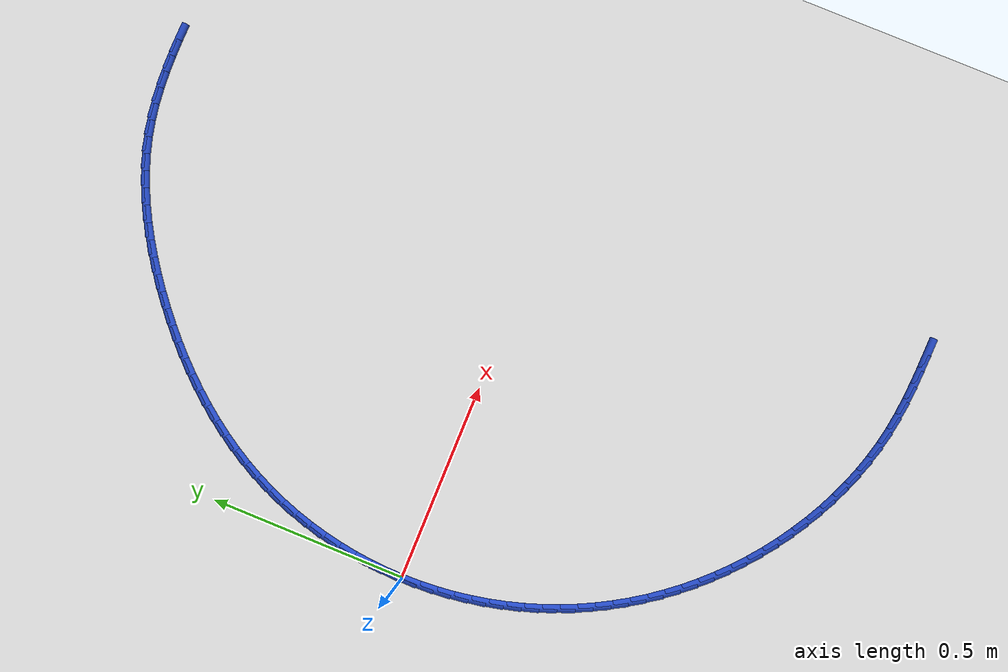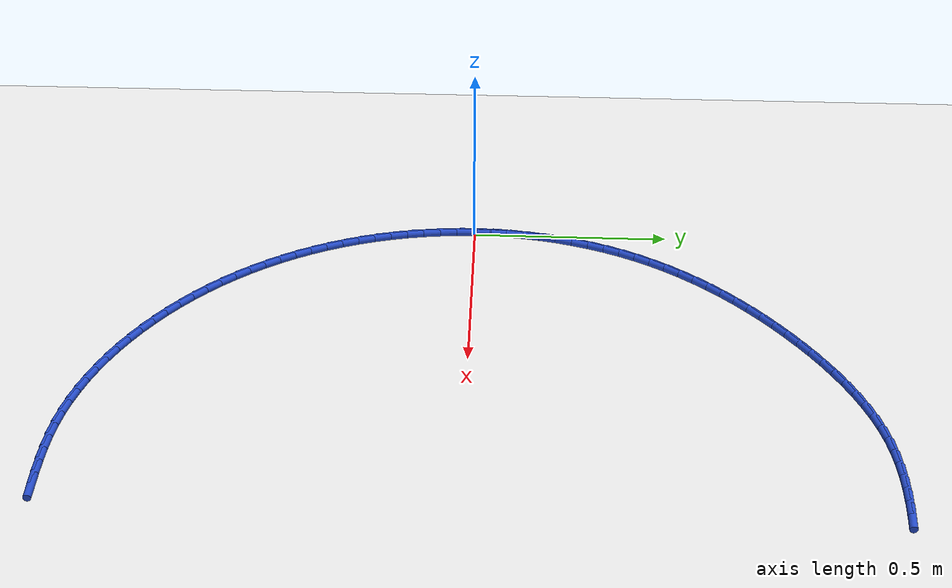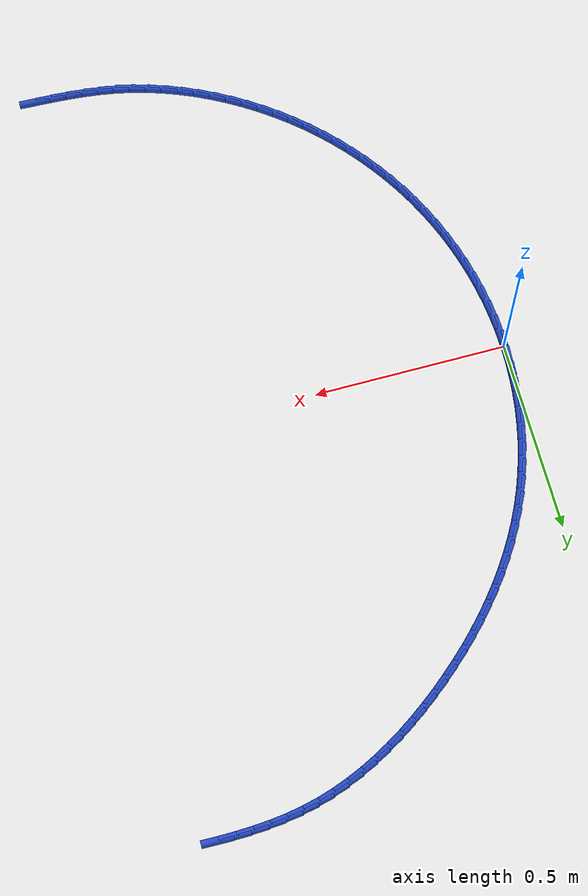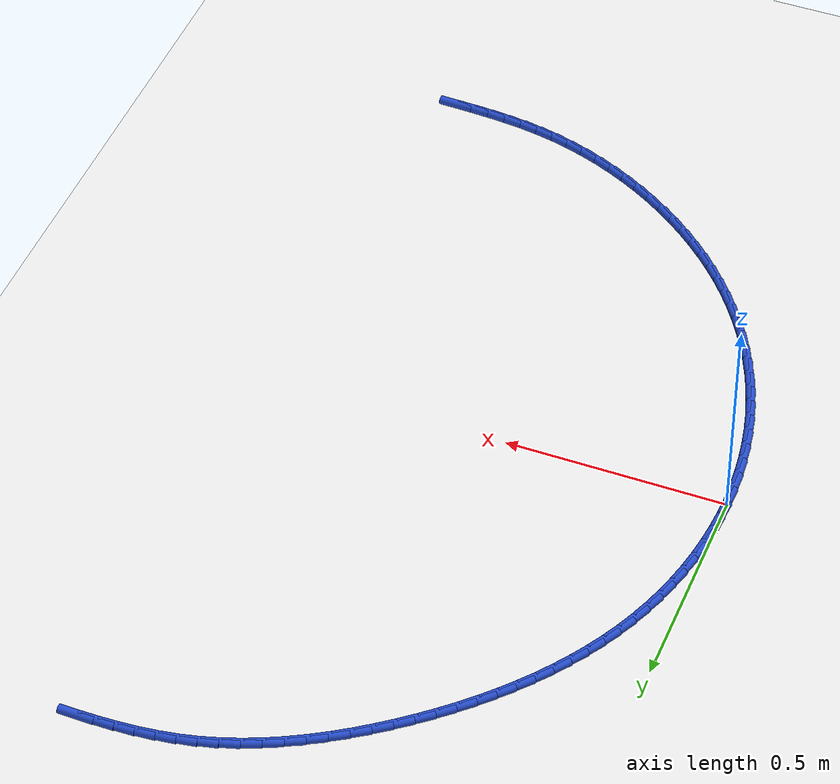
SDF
<sdf version="1.6">
 <world name="default">
  <model name="ground_plane">
   <static>1</static>
   <link name="link">
    <collision name="collision">
     <geometry><plane><normal>0 0 1</normal><size>100 100</size></plane></geometry>
     <surface><friction><ode><mu>100</mu><mu2>50</mu2></ode></friction></surface>
    </collision>
    <visual name="visual">
     <cast_shadows>0</cast_shadows>
     <geometry><plane><normal>0 0 1</normal><size>100 100</size></plane></geometry>
     <material>
      <script><uri>file://media/materials/scripts/gazebo.material</uri><name>Gazebo/WhiteGlow</name></script>
     </material>
    </visual>
   </link>
  </model>
  <model name="line">
   <link name="link_0">
    <pose>1.0408340855860843e-17 -1.3877787807814457e-16 0.01 0 1.57 1.5510047050633564</pose>
    <collision name="collision">
     <geometry><cylinder><radius>0.01</radius><length>0.08</length></cylinder></geometry>
    </collision>
    <visual name="visual">
     <material>
      <script><name>Gazebo/Blue</name><uri>file://media/materials/scripts/gazebo.material</uri></script>
     </material>
     <geometry><cylinder><radius>0.01</radius><length>0.08</length></cylinder></geometry>
    </visual>
   </link>
   <link name="link_1">
    <pose>0.0008661670041303693 0.0437586125074585 0.01 0 1.57 1.5073824227022519</pose>
    <collision name="collision">
     <geometry><cylinder><radius>0.01</radius><length>0.08</length></cylinder></geometry>
    </collision>
    <visual name="visual">
     <material>
      <script><name>Gazebo/Blue</name><uri>file://media/materials/scripts/gazebo.material</uri></script>
     </material>
     <geometry><cylinder><radius>0.01</radius><length>0.08</length></cylinder></geometry>
    </visual>
   </link>
   <link name="link_2">
    <pose>0.003640453336723728 0.08744881905656593 0.01 0 1.57 1.4637581779412188</pose>
    <collision name="collision">
     <geometry><cylinder><radius>0.01</radius><length>0.08</length></cylinder></geometry>
    </collision>
    <visual name="visual">
     <material>
      <script><name>Gazebo/Blue</name><uri>file://media/materials/scripts/gazebo.material</uri></script>
     </material>
     <geometry><cylinder><radius>0.01</radius><length>0.08</length></cylinder></geometry>
    </visual>
   </link>
   <link name="link_3">
    <pose>0.00831672128322156 0.1309697077833986 0.01 0 1.57 1.4199958995333815</pose>
    <collision name="collision">
     <geometry><cylinder><radius>0.01</radius><length>0.08</length></cylinder></geometry>
    </collision>
    <visual name="visual">
     <material>
      <script><name>Gazebo/Blue</name><uri>file://media/materials/scripts/gazebo.material</uri></script>
     </material>
     <geometry><cylinder><radius>0.01</radius><length>0.08</length></cylinder></geometry>
    </visual>
   </link>
   <link name="link_4">
    <pose>0.014888833129065325 0.17422036682403302 0.01 0 1.57 1.3759603452155063</pose>
    <collision name="collision">
     <geometry><cylinder><radius>0.01</radius><length>0.08</length></cylinder></geometry>
    </collision>
    <visual name="visual">
     <material>
      <script><name>Gazebo/Blue</name><uri>file://media/materials/scripts/gazebo.material</uri></script>
     </material>
     <geometry><cylinder><radius>0.01</radius><length>0.08</length></cylinder></geometry>
    </visual>
   </link>
   <link name="link_5">
    <pose>0.023350651159696492 0.2170998843145456 0.01 0 1.57 1.3315179308007221</pose>
    <collision name="collision">
     <geometry><cylinder><radius>0.01</radius><length>0.08</length></cylinder></geometry>
    </collision>
    <visual name="visual">
     <material>
      <script><name>Gazebo/Blue</name><uri>file://media/materials/scripts/gazebo.material</uri></script>
     </material>
     <geometry><cylinder><radius>0.01</radius><length>0.08</length></cylinder></geometry>
    </visual>
   </link>
   <link name="link_6">
    <pose>0.033696037660556545 0.2595073483910131 0.01 0 1.57 1.286537709282582</pose>
    <collision name="collision">
     <geometry><cylinder><radius>0.01</radius><length>0.08</length></cylinder></geometry>
    </collision>
    <visual name="visual">
     <material>
      <script><name>Gazebo/Blue</name><uri>file://media/materials/scripts/gazebo.material</uri></script>
     </material>
     <geometry><cylinder><radius>0.01</radius><length>0.08</length></cylinder></geometry>
    </visual>
   </link>
   <link name="link_7">
    <pose>0.04591885491708693 0.30134184718951174 0.01 0 1.57 1.2408925728374436</pose>
    <collision name="collision">
     <geometry><cylinder><radius>0.01</radius><length>0.08</length></cylinder></geometry>
    </collision>
    <visual name="visual">
     <material>
      <script><name>Gazebo/Blue</name><uri>file://media/materials/scripts/gazebo.material</uri></script>
     </material>
     <geometry><cylinder><radius>0.01</radius><length>0.08</length></cylinder></geometry>
    </visual>
   </link>
   <link name="link_8">
    <pose>0.06001296521472912 0.3425024688461182 0.01 0 1.57 1.1944607478046259</pose>
    <collision name="collision">
     <geometry><cylinder><radius>0.01</radius><length>0.08</length></cylinder></geometry>
    </collision>
    <visual name="visual">
     <material>
      <script><name>Gazebo/Blue</name><uri>file://media/materials/scripts/gazebo.material</uri></script>
     </material>
     <geometry><cylinder><radius>0.01</radius><length>0.08</length></cylinder></geometry>
    </visual>
   </link>
   <link name="link_9">
    <pose>0.0759722308389246 0.38288830149690894 0.01 0 1.57 1.147153978568763</pose>
    <collision name="collision">
     <geometry><cylinder><radius>0.01</radius><length>0.08</length></cylinder></geometry>
    </collision>
    <visual name="visual">
     <material>
      <script><name>Gazebo/Blue</name><uri>file://media/materials/scripts/gazebo.material</uri></script>
     </material>
     <geometry><cylinder><radius>0.01</radius><length>0.08</length></cylinder></geometry>
    </visual>
   </link>
   <link name="link_10">
    <pose>0.09378972469658972 0.4223994590807371 0.01 0 1.57 1.0999242929448283</pose>
    <collision name="collision">
     <geometry><cylinder><radius>0.01</radius><length>0.08</length></cylinder></geometry>
    </collision>
    <visual name="visual">
     <material>
      <script><name>Gazebo/Blue</name><uri>file://media/materials/scripts/gazebo.material</uri></script>
     </material>
     <geometry><cylinder><radius>0.01</radius><length>0.08</length></cylinder></geometry>
    </visual>
   </link>
   <link name="link_11">
    <pose>0.11342769083888135 0.4609761178447701 0.01 0 1.57 1.0541549785975148</pose>
    <collision name="collision">
     <geometry><cylinder><radius>0.01</radius><length>0.08</length></cylinder></geometry>
    </collision>
    <visual name="visual">
     <material>
      <script><name>Gazebo/Blue</name><uri>file://media/materials/scripts/gazebo.material</uri></script>
     </material>
     <geometry><cylinder><radius>0.01</radius><length>0.08</length></cylinder></geometry>
    </visual>
   </link>
   <link name="link_12">
    <pose>0.13480824333574323 0.49861060322044926 0.01 0 1.57 1.00999541218974</pose>
    <collision name="collision">
     <geometry><cylinder><radius>0.01</radius><length>0.08</length></cylinder></geometry>
    </collision>
    <visual name="visual">
     <material>
      <script><name>Gazebo/Blue</name><uri>file://media/materials/scripts/gazebo.material</uri></script>
     </material>
     <geometry><cylinder><radius>0.01</radius><length>0.08</length></cylinder></geometry>
    </visual>
   </link>
   <link name="link_13">
    <pose>0.15785080601760312 0.5352987366238143 0.01 0 1.57 0.9674761682138244</pose>
    <collision name="collision">
     <geometry><cylinder><radius>0.01</radius><length>0.08</length></cylinder></geometry>
    </collision>
    <visual name="visual">
     <material>
      <script><name>Gazebo/Blue</name><uri>file://media/materials/scripts/gazebo.material</uri></script>
     </material>
     <geometry><cylinder><radius>0.01</radius><length>0.08</length></cylinder></geometry>
    </visual>
   </link>
   <link name="link_14">
    <pose>0.18247480271488886 0.5710363394709055 0.01 0 1.57 0.9266021937544706</pose>
    <collision name="collision">
     <geometry><cylinder><radius>0.01</radius><length>0.08</length></cylinder></geometry>
    </collision>
    <visual name="visual">
     <material>
      <script><name>Gazebo/Blue</name><uri>file://media/materials/scripts/gazebo.material</uri></script>
     </material>
     <geometry><cylinder><radius>0.01</radius><length>0.08</length></cylinder></geometry>
    </visual>
   </link>
   <link name="link_15">
    <pose>0.2085996572580282 0.605819233177763 0.01 0 1.57 0.8873565271350221</pose>
    <collision name="collision">
     <geometry><cylinder><radius>0.01</radius><length>0.08</length></cylinder></geometry>
    </collision>
    <visual name="visual">
     <material>
      <script><name>Gazebo/Blue</name><uri>file://media/materials/scripts/gazebo.material</uri></script>
     </material>
     <geometry><cylinder><radius>0.01</radius><length>0.08</length></cylinder></geometry>
    </visual>
   </link>
   <link name="link_16">
    <pose>0.23614479347744888 0.6396432391604265 0.01 0 1.57 0.8497040258405479</pose>
    <collision name="collision">
     <geometry><cylinder><radius>0.01</radius><length>0.08</length></cylinder></geometry>
    </collision>
    <visual name="visual">
     <material>
      <script><name>Gazebo/Blue</name><uri>file://media/materials/scripts/gazebo.material</uri></script>
     </material>
     <geometry><cylinder><radius>0.01</radius><length>0.08</length></cylinder></geometry>
    </visual>
   </link>
   <link name="link_17">
    <pose>0.2650296352035787 0.6725041788349362 0.01 0 1.57 0.8135949042184399</pose>
    <collision name="collision">
     <geometry><cylinder><radius>0.01</radius><length>0.08</length></cylinder></geometry>
    </collision>
    <visual name="visual">
     <material>
      <script><name>Gazebo/Blue</name><uri>file://media/materials/scripts/gazebo.material</uri></script>
     </material>
     <geometry><cylinder><radius>0.01</radius><length>0.08</length></cylinder></geometry>
    </visual>
   </link>
   <link name="link_18">
    <pose>0.29517360626684525 0.704397873617332 0.01 0 1.57 0.7789679485572772</pose>
    <collision name="collision">
     <geometry><cylinder><radius>0.01</radius><length>0.08</length></cylinder></geometry>
    </collision>
    <visual name="visual">
     <material>
      <script><name>Gazebo/Blue</name><uri>file://media/materials/scripts/gazebo.material</uri></script>
     </material>
     <geometry><cylinder><radius>0.01</radius><length>0.08</length></cylinder></geometry>
    </visual>
   </link>
   <link name="link_19">
    <pose>0.3264961304976766 0.735320144923654 0.01 0 1.57 0.7457533346031334</pose>
    <collision name="collision">
     <geometry><cylinder><radius>0.01</radius><length>0.08</length></cylinder></geometry>
    </collision>
    <visual name="visual">
     <material>
      <script><name>Gazebo/Blue</name><uri>file://media/materials/scripts/gazebo.material</uri></script>
     </material>
     <geometry><cylinder><radius>0.01</radius><length>0.08</length></cylinder></geometry>
    </visual>
   </link>
   <link name="link_20">
    <pose>0.3589166317265001 0.7652668141699421 0.01 0 1.57 0.7138750176041784</pose>
    <collision name="collision">
     <geometry><cylinder><radius>0.01</radius><length>0.08</length></cylinder></geometry>
    </collision>
    <visual name="visual">
     <material>
      <script><name>Gazebo/Blue</name><uri>file://media/materials/scripts/gazebo.material</uri></script>
     </material>
     <geometry><cylinder><radius>0.01</radius><length>0.08</length></cylinder></geometry>
    </visual>
   </link>
   <link name="link_21">
    <pose>0.39235453378374396 0.7942337027722364 0.01 0 1.57 0.6832103914307424</pose>
    <collision name="collision">
     <geometry><cylinder><radius>0.01</radius><length>0.08</length></cylinder></geometry>
    </collision>
    <visual name="visual">
     <material>
      <script><name>Gazebo/Blue</name><uri>file://media/materials/scripts/gazebo.material</uri></script>
     </material>
     <geometry><cylinder><radius>0.01</radius><length>0.08</length></cylinder></geometry>
    </visual>
   </link>
   <link name="link_22">
    <pose>0.4267297880257817 0.8222146436564644 0.01 0 1.57 0.6521258205594856</pose>
    <collision name="collision">
     <geometry><cylinder><radius>0.01</radius><length>0.08</length></cylinder></geometry>
    </collision>
    <visual name="visual">
     <material>
      <script><name>Gazebo/Blue</name><uri>file://media/materials/scripts/gazebo.material</uri></script>
     </material>
     <geometry><cylinder><radius>0.01</radius><length>0.08</length></cylinder></geometry>
    </visual>
   </link>
   <link name="link_23">
    <pose>0.46198142945039494 0.8491315346474649 0.01 0 1.57 0.6185035362746216</pose>
    <collision name="collision">
     <geometry><cylinder><radius>0.01</radius><length>0.08</length></cylinder></geometry>
    </collision>
    <visual name="visual">
     <material>
      <script><name>Gazebo/Blue</name><uri>file://media/materials/scripts/gazebo.material</uri></script>
     </material>
     <geometry><cylinder><radius>0.01</radius><length>0.08</length></cylinder></geometry>
    </visual>
   </link>
   <link name="link_24">
    <pose>0.49807248970099144 0.8748158190759854 0.01 0 1.57 0.5819867778900134</pose>
    <collision name="collision">
     <geometry><cylinder><radius>0.01</radius><length>0.08</length></cylinder></geometry>
    </collision>
    <visual name="visual">
     <material>
      <script><name>Gazebo/Blue</name><uri>file://media/materials/scripts/gazebo.material</uri></script>
     </material>
     <geometry><cylinder><radius>0.01</radius><length>0.08</length></cylinder></geometry>
    </visual>
   </link>
   <link name="link_25">
    <pose>0.5349675267407503 0.8990931868652021 0.01 0 1.57 0.5423304885213913</pose>
    <collision name="collision">
     <geometry><cylinder><radius>0.01</radius><length>0.08</length></cylinder></geometry>
    </collision>
    <visual name="visual">
     <material>
      <script><name>Gazebo/Blue</name><uri>file://media/materials/scripts/gazebo.material</uri></script>
     </material>
     <geometry><cylinder><radius>0.01</radius><length>0.08</length></cylinder></geometry>
    </visual>
   </link>
   <link name="link_26">
    <pose>0.5726310985328501 0.9217893279382899 0.01 0 1.57 0.49928588309935407</pose>
    <collision name="collision">
     <geometry><cylinder><radius>0.01</radius><length>0.08</length></cylinder></geometry>
    </collision>
    <visual name="visual">
     <material>
      <script><name>Gazebo/Blue</name><uri>file://media/materials/scripts/gazebo.material</uri></script>
     </material>
     <geometry><cylinder><radius>0.01</radius><length>0.08</length></cylinder></geometry>
    </visual>
   </link>
   <link name="link_27">
    <pose>0.6110277630404698 0.9427299322184245 0.01 0 1.57 0.452610946824274</pose>
    <collision name="collision">
     <geometry><cylinder><radius>0.01</radius><length>0.08</length></cylinder></geometry>
    </collision>
    <visual name="visual">
     <material>
      <script><name>Gazebo/Blue</name><uri>file://media/materials/scripts/gazebo.material</uri></script>
     </material>
     <geometry><cylinder><radius>0.01</radius><length>0.08</length></cylinder></geometry>
    </visual>
   </link>
   <link name="link_28">
    <pose>0.6501220782267878 0.9617406896287812 0.01 0 1.57 0.4020853352109531</pose>
    <collision name="collision">
     <geometry><cylinder><radius>0.01</radius><length>0.08</length></cylinder></geometry>
    </collision>
    <visual name="visual">
     <material>
      <script><name>Gazebo/Blue</name><uri>file://media/materials/scripts/gazebo.material</uri></script>
     </material>
     <geometry><cylinder><radius>0.01</radius><length>0.08</length></cylinder></geometry>
    </visual>
   </link>
   <link name="link_29">
    <pose>0.689878602054983 0.9786472900925355 0.01 0 1.57 0.3475303870564808</pose>
    <collision name="collision">
     <geometry><cylinder><radius>0.01</radius><length>0.08</length></cylinder></geometry>
    </collision>
    <visual name="visual">
     <material>
      <script><name>Gazebo/Blue</name><uri>file://media/materials/scripts/gazebo.material</uri></script>
     </material>
     <geometry><cylinder><radius>0.01</radius><length>0.08</length></cylinder></geometry>
    </visual>
   </link>
   <link name="link_30">
    <pose>0.7302618924882339 0.9932754235328627 0.01 0 1.57 0.2888344512729044</pose>
    <collision name="collision">
     <geometry><cylinder><radius>0.01</radius><length>0.08</length></cylinder></geometry>
    </collision>
    <visual name="visual">
     <material>
      <script><name>Gazebo/Blue</name><uri>file://media/materials/scripts/gazebo.material</uri></script>
     </material>
     <geometry><cylinder><radius>0.01</radius><length>0.08</length></cylinder></geometry>
    </visual>
   </link>
   <link name="link_31">
    <pose>0.7712365074897194 1.005450779872938 0.01 0 1.57 0.22665506433912064</pose>
    <collision name="collision">
     <geometry><cylinder><radius>0.01</radius><length>0.08</length></cylinder></geometry>
    </collision>
    <visual name="visual">
     <material>
      <script><name>Gazebo/Blue</name><uri>file://media/materials/scripts/gazebo.material</uri></script>
     </material>
     <geometry><cylinder><radius>0.01</radius><length>0.08</length></cylinder></geometry>
    </visual>
   </link>
   <link name="link_32">
    <pose>0.8127670217429207 1.0150284554934534 0.01 0 1.57 0.16758040289350418</pose>
    <collision name="collision">
     <geometry><cylinder><radius>0.01</radius><length>0.08</length></cylinder></geometry>
    </collision>
    <visual name="visual">
     <material>
      <script><name>Gazebo/Blue</name><uri>file://media/materials/scripts/gazebo.material</uri></script>
     </material>
     <geometry><cylinder><radius>0.01</radius><length>0.08</length></cylinder></geometry>
    </visual>
   </link>
   <link name="link_33">
    <pose>0.8548181683261065 1.0221421200556822 0.01 0 1.57 0.11554661833901113</pose>
    <collision name="collision">
     <geometry><cylinder><radius>0.01</radius><length>0.08</length></cylinder></geometry>
    </collision>
    <visual name="visual">
     <material>
      <script><name>Gazebo/Blue</name><uri>file://media/materials/scripts/gazebo.material</uri></script>
     </material>
     <geometry><cylinder><radius>0.01</radius><length>0.08</length></cylinder></geometry>
    </visual>
   </link>
   <link name="link_34">
    <pose>0.8973547676691845 1.0270790709578395 0.01 0 1.57 0.07081333367064521</pose>
    <collision name="collision">
     <geometry><cylinder><radius>0.01</radius><length>0.08</length></cylinder></geometry>
    </collision>
    <visual name="visual">
     <material>
      <script><name>Gazebo/Blue</name><uri>file://media/materials/scripts/gazebo.material</uri></script>
     </material>
     <geometry><cylinder><radius>0.01</radius><length>0.08</length></cylinder></geometry>
    </visual>
   </link>
   <link name="link_35">
    <pose>0.9403416411161021 1.0301282131451883 0.01 0 1.57 0.03340168854281028</pose>
    <collision name="collision">
     <geometry><cylinder><radius>0.01</radius><length>0.08</length></cylinder></geometry>
    </collision>
    <visual name="visual">
     <material>
      <script><name>Gazebo/Blue</name><uri>file://media/materials/scripts/gazebo.material</uri></script>
     </material>
     <geometry><cylinder><radius>0.01</radius><length>0.08</length></cylinder></geometry>
    </visual>
   </link>
   <link name="link_36">
    <pose>0.9837436100108066 1.0315784515629902 0.01 0 1.57 0.003203130968377201</pose>
    <collision name="collision">
     <geometry><cylinder><radius>0.01</radius><length>0.08</length></cylinder></geometry>
    </collision>
    <visual name="visual">
     <material>
      <script><name>Gazebo/Blue</name><uri>file://media/materials/scripts/gazebo.material</uri></script>
     </material>
     <geometry><cylinder><radius>0.01</radius><length>0.08</length></cylinder></geometry>
    </visual>
   </link>
   <link name="link_37">
    <pose>1.0275254956972457 1.0317186911565084 0.01 0 1.57 -0.01995931789442275</pose>
    <collision name="collision">
     <geometry><cylinder><radius>0.01</radius><length>0.08</length></cylinder></geometry>
    </collision>
    <visual name="visual">
     <material>
      <script><name>Gazebo/Blue</name><uri>file://media/materials/scripts/gazebo.material</uri></script>
     </material>
     <geometry><cylinder><radius>0.01</radius><length>0.08</length></cylinder></geometry>
    </visual>
   </link>
   <link name="link_114">
    <pose>0.9976983601047584 -0.9938464001297738 0.01 0 1.57 -0.0371063646945503</pose>
    <collision name="collision">
     <geometry><cylinder><radius>0.01</radius><length>0.08</length></cylinder></geometry>
    </collision>
    <visual name="visual">
     <material>
      <script><name>Gazebo/Blue</name><uri>file://media/materials/scripts/gazebo.material</uri></script>
     </material>
     <geometry><cylinder><radius>0.01</radius><length>0.08</length></cylinder></geometry>
    </visual>
   </link>
   <link name="link_115">
    <pose>0.9544740326542076 -0.992241765939968 0.01 0 1.57 -0.054501397112136515</pose>
    <collision name="collision">
     <geometry><cylinder><radius>0.01</radius><length>0.08</length></cylinder></geometry>
    </collision>
    <visual name="visual">
     <material>
      <script><name>Gazebo/Blue</name><uri>file://media/materials/scripts/gazebo.material</uri></script>
     </material>
     <geometry><cylinder><radius>0.01</radius><length>0.08</length></cylinder></geometry>
    </visual>
   </link>
   <link name="link_116">
    <pose>0.9116351856137184 -0.9899046744332322 0.01 0 1.57 -0.08051912602652682</pose>
    <collision name="collision">
     <geometry><cylinder><radius>0.01</radius><length>0.08</length></cylinder></geometry>
    </collision>
    <visual name="visual">
     <material>
      <script><name>Gazebo/Blue</name><uri>file://media/materials/scripts/gazebo.material</uri></script>
     </material>
     <geometry><cylinder><radius>0.01</radius><length>0.08</length></cylinder></geometry>
    </visual>
   </link>
   <link name="link_117">
    <pose>0.8691393104832323 -0.986475529744436 0.01 0 1.57 -0.1151594114228468</pose>
    <collision name="collision">
     <geometry><cylinder><radius>0.01</radius><length>0.08</length></cylinder></geometry>
    </collision>
    <visual name="visual">
     <material>
      <script><name>Gazebo/Blue</name><uri>file://media/materials/scripts/gazebo.material</uri></script>
     </material>
     <geometry><cylinder><radius>0.01</radius><length>0.08</length></cylinder></geometry>
    </visual>
   </link>
   <link name="link_118">
    <pose>0.8269438987626884 -0.9815947360084487 0.01 0 1.57 -0.15823779650653919</pose>
    <collision name="collision">
     <geometry><cylinder><radius>0.01</radius><length>0.08</length></cylinder></geometry>
    </collision>
    <visual name="visual">
     <material>
      <script><name>Gazebo/Blue</name><uri>file://media/materials/scripts/gazebo.material</uri></script>
     </material>
     <geometry><cylinder><radius>0.01</radius><length>0.08</length></cylinder></geometry>
    </visual>
   </link>
   <link name="link_119">
    <pose>0.7850064419520273 -0.9749026973601393 0.01 0 1.57 -0.20908555439307688</pose>
    <collision name="collision">
     <geometry><cylinder><radius>0.01</radius><length>0.08</length></cylinder></geometry>
    </collision>
    <visual name="visual">
     <material>
      <script><name>Gazebo/Blue</name><uri>file://media/materials/scripts/gazebo.material</uri></script>
     </material>
     <geometry><cylinder><radius>0.01</radius><length>0.08</length></cylinder></geometry>
    </visual>
   </link>
   <link name="link_120">
    <pose>0.7432879929030094 -0.9660505997548636 0.01 0 1.57 -0.2624350085869959</pose>
    <collision name="collision">
     <geometry><cylinder><radius>0.01</radius><length>0.08</length></cylinder></geometry>
    </collision>
    <visual name="visual">
     <material>
      <script><name>Gazebo/Blue</name><uri>file://media/materials/scripts/gazebo.material</uri></script>
     </material>
     <geometry><cylinder><radius>0.01</radius><length>0.08</length></cylinder></geometry>
    </visual>
   </link>
   <link name="link_121">
    <pose>0.7018230017085604 -0.9549118357476629 0.01 0 1.57 -0.31386071085934053</pose>
    <collision name="collision">
     <geometry><cylinder><radius>0.01</radius><length>0.08</length></cylinder></geometry>
    </collision>
    <visual name="visual">
     <material>
      <script><name>Gazebo/Blue</name><uri>file://media/materials/scripts/gazebo.material</uri></script>
     </material>
     <geometry><cylinder><radius>0.01</radius><length>0.08</length></cylinder></geometry>
    </visual>
   </link>
   <link name="link_122">
    <pose>0.6607148759700098 -0.9415685634169455 0.01 0 1.57 -0.36341278744573086</pose>
    <collision name="collision">
     <geometry><cylinder><radius>0.01</radius><length>0.08</length></cylinder></geometry>
    </collision>
    <visual name="visual">
     <material>
      <script><name>Gazebo/Blue</name><uri>file://media/materials/scripts/gazebo.material</uri></script>
     </material>
     <geometry><cylinder><radius>0.01</radius><length>0.08</length></cylinder></geometry>
    </visual>
   </link>
   <link name="link_123">
    <pose>0.6200696956101138 -0.9261110311650659 0.01 0 1.57 -0.4113255851606156</pose>
    <collision name="collision">
     <geometry><cylinder><radius>0.01</radius><length>0.08</length></cylinder></geometry>
    </collision>
    <visual name="visual">
     <material>
      <script><name>Gazebo/Blue</name><uri>file://media/materials/scripts/gazebo.material</uri></script>
     </material>
     <geometry><cylinder><radius>0.01</radius><length>0.08</length></cylinder></geometry>
    </visual>
   </link>
   <link name="link_124">
    <pose>0.5799935405516302 -0.9086294873943787 0.01 0 1.57 -0.4578397826056679</pose>
    <collision name="collision">
     <geometry><cylinder><radius>0.01</radius><length>0.08</length></cylinder></geometry>
    </collision>
    <visual name="visual">
     <material>
      <script><name>Gazebo/Blue</name><uri>file://media/materials/scripts/gazebo.material</uri></script>
     </material>
     <geometry><cylinder><radius>0.01</radius><length>0.08</length></cylinder></geometry>
    </visual>
   </link>
   <link name="link_125">
    <pose>0.5405924907173169 -0.8892141805072394 0.01 0 1.57 -0.5031989102716843</pose>
    <collision name="collision">
     <geometry><cylinder><radius>0.01</radius><length>0.08</length></cylinder></geometry>
    </collision>
    <visual name="visual">
     <material>
      <script><name>Gazebo/Blue</name><uri>file://media/materials/scripts/gazebo.material</uri></script>
     </material>
     <geometry><cylinder><radius>0.01</radius><length>0.08</length></cylinder></geometry>
    </visual>
   </link>
   <link name="link_126">
    <pose>0.5019726260299299 -0.8679553589060023 0.01 0 1.57 -0.5476473373341262</pose>
    <collision name="collision">
     <geometry><cylinder><radius>0.01</radius><length>0.08</length></cylinder></geometry>
    </collision>
    <visual name="visual">
     <material>
      <script><name>Gazebo/Blue</name><uri>file://media/materials/scripts/gazebo.material</uri></script>
     </material>
     <geometry><cylinder><radius>0.01</radius><length>0.08</length></cylinder></geometry>
    </visual>
   </link>
   <link name="link_127">
    <pose>0.46424002641222756 -0.8449432709930226 0.01 0 1.57 -0.5914293943834186</pose>
    <collision name="collision">
     <geometry><cylinder><radius>0.01</radius><length>0.08</length></cylinder></geometry>
    </collision>
    <visual name="visual">
     <material>
      <script><name>Gazebo/Blue</name><uri>file://media/materials/scripts/gazebo.material</uri></script>
     </material>
     <geometry><cylinder><radius>0.01</radius><length>0.08</length></cylinder></geometry>
    </visual>
   </link>
   <link name="link_128">
    <pose>0.4275007717869662 -0.8202681651706546 0.01 0 1.57 -0.6347893447493848</pose>
    <collision name="collision">
     <geometry><cylinder><radius>0.01</radius><length>0.08</length></cylinder></geometry>
    </collision>
    <visual name="visual">
     <material>
      <script><name>Gazebo/Blue</name><uri>file://media/materials/scripts/gazebo.material</uri></script>
     </material>
     <geometry><cylinder><radius>0.01</radius><length>0.08</length></cylinder></geometry>
    </visual>
   </link>
   <link name="link_129">
    <pose>0.39186094207690336 -0.7940202898412533 0.01 0 1.57 -0.6779719610767344</pose>
    <collision name="collision">
     <geometry><cylinder><radius>0.01</radius><length>0.08</length></cylinder></geometry>
    </collision>
    <visual name="visual">
     <material>
      <script><name>Gazebo/Blue</name><uri>file://media/materials/scripts/gazebo.material</uri></script>
     </material>
     <geometry><cylinder><radius>0.01</radius><length>0.08</length></cylinder></geometry>
    </visual>
   </link>
   <link name="link_130">
    <pose>0.357426617204797 -0.766289893407174 0.01 0 1.57 -0.7212229235962626</pose>
    <collision name="collision">
     <geometry><cylinder><radius>0.01</radius><length>0.08</length></cylinder></geometry>
    </collision>
    <visual name="visual">
     <material>
      <script><name>Gazebo/Blue</name><uri>file://media/materials/scripts/gazebo.material</uri></script>
     </material>
     <geometry><cylinder><radius>0.01</radius><length>0.08</length></cylinder></geometry>
    </visual>
   </link>
   <link name="link_131">
    <pose>0.32430378159476925 -0.7371671741568254 0.01 0 1.57 -0.7646491848621289</pose>
    <collision name="collision">
     <geometry><cylinder><radius>0.01</radius><length>0.08</length></cylinder></geometry>
    </collision>
    <visual name="visual">
     <material>
      <script><name>Gazebo/Blue</name><uri>file://media/materials/scripts/gazebo.material</uri></script>
     </material>
     <geometry><cylinder><radius>0.01</radius><length>0.08</length></cylinder></geometry>
    </visual>
   </link>
   <link name="link_132">
    <pose>0.29257857016011535 -0.7067319141322129 0.01 0 1.57 -0.8080739474601591</pose>
    <collision name="collision">
     <geometry><cylinder><radius>0.01</radius><length>0.08</length></cylinder></geometry>
    </collision>
    <visual name="visual">
     <material>
      <script><name>Gazebo/Blue</name><uri>file://media/materials/scripts/gazebo.material</uri></script>
     </material>
     <geometry><cylinder><radius>0.01</radius><length>0.08</length></cylinder></geometry>
    </visual>
   </link>
   <link name="link_133">
    <pose>0.26229302394030496 -0.6750407566361216 0.01 0 1.57 -0.8514854431826588</pose>
    <collision name="collision">
     <geometry><cylinder><radius>0.01</radius><length>0.08</length></cylinder></geometry>
    </collision>
    <visual name="visual">
     <material>
      <script><name>Gazebo/Blue</name><uri>file://media/materials/scripts/gazebo.material</uri></script>
     </material>
     <geometry><cylinder><radius>0.01</radius><length>0.08</length></cylinder></geometry>
    </visual>
   </link>
   <link name="link_134">
    <pose>0.23348324758298655 -0.642147229785251 0.01 0 1.57 -0.8949099558280581</pose>
    <collision name="collision">
     <geometry><cylinder><radius>0.01</radius><length>0.08</length></cylinder></geometry>
    </collision>
    <visual name="visual">
     <material>
      <script><name>Gazebo/Blue</name><uri>file://media/materials/scripts/gazebo.material</uri></script>
     </material>
     <geometry><cylinder><radius>0.01</radius><length>0.08</length></cylinder></geometry>
    </visual>
   </link>
   <link name="link_135">
    <pose>0.20618534573580863 -0.6081048616962998 0.01 0 1.57 -0.9383753311768752</pose>
    <collision name="collision">
     <geometry><cylinder><radius>0.01</radius><length>0.08</length></cylinder></geometry>
    </collision>
    <visual name="visual">
     <material>
      <script><name>Gazebo/Blue</name><uri>file://media/materials/scripts/gazebo.material</uri></script>
     </material>
     <geometry><cylinder><radius>0.01</radius><length>0.08</length></cylinder></geometry>
    </visual>
   </link>
   <link name="link_136">
    <pose>0.18043542304641805 -0.572967180485966 0.01 0 1.57 -0.9819102903521278</pose>
    <collision name="collision">
     <geometry><cylinder><radius>0.01</radius><length>0.08</length></cylinder></geometry>
    </collision>
    <visual name="visual">
     <material>
      <script><name>Gazebo/Blue</name><uri>file://media/materials/scripts/gazebo.material</uri></script>
     </material>
     <geometry><cylinder><radius>0.01</radius><length>0.08</length></cylinder></geometry>
    </visual>
   </link>
   <link name="link_137">
    <pose>0.15626958416246334 -0.5367877142709483 0.01 0 1.57 -1.0255437243760153</pose>
    <collision name="collision">
     <geometry><cylinder><radius>0.01</radius><length>0.08</length></cylinder></geometry>
    </collision>
    <visual name="visual">
     <material>
      <script><name>Gazebo/Blue</name><uri>file://media/materials/scripts/gazebo.material</uri></script>
     </material>
     <geometry><cylinder><radius>0.01</radius><length>0.08</length></cylinder></geometry>
    </visual>
   </link>
   <link name="link_138">
    <pose>0.13372393373159278 -0.4996199911679462 0.01 0 1.57 -1.0693039729098497</pose>
    <collision name="collision">
     <geometry><cylinder><radius>0.01</radius><length>0.08</length></cylinder></geometry>
    </collision>
    <visual name="visual">
     <material>
      <script><name>Gazebo/Blue</name><uri>file://media/materials/scripts/gazebo.material</uri></script>
     </material>
     <geometry><cylinder><radius>0.01</radius><length>0.08</length></cylinder></geometry>
    </visual>
   </link>
   <link name="link_139">
    <pose>0.11283457640145357 -0.4615175392936571 0.01 0 1.57 -1.113218090378099</pose>
    <collision name="collision">
     <geometry><cylinder><radius>0.01</radius><length>0.08</length></cylinder></geometry>
    </collision>
    <visual name="visual">
     <material>
      <script><name>Gazebo/Blue</name><uri>file://media/materials/scripts/gazebo.material</uri></script>
     </material>
     <geometry><cylinder><radius>0.01</radius><length>0.08</length></cylinder></geometry>
    </visual>
   </link>
   <link name="link_140">
    <pose>0.09363761681969432 -0.42253388676478065 0.01 0 1.57 -1.1572881629665974</pose>
    <collision name="collision">
     <geometry><cylinder><radius>0.01</radius><length>0.08</length></cylinder></geometry>
    </collision>
    <visual name="visual">
     <material>
      <script><name>Gazebo/Blue</name><uri>file://media/materials/scripts/gazebo.material</uri></script>
     </material>
     <geometry><cylinder><radius>0.01</radius><length>0.08</length></cylinder></geometry>
    </visual>
   </link>
   <link name="link_141">
    <pose>0.07616849977854745 -0.38272353999136705 0.01 0 1.57 -1.201206441310935</pose>
    <collision name="collision">
     <geometry><cylinder><radius>0.01</radius><length>0.08</length></cylinder></geometry>
    </collision>
    <visual name="visual">
     <material>
      <script><name>Gazebo/Blue</name><uri>file://media/materials/scripts/gazebo.material</uri></script>
     </material>
     <geometry><cylinder><radius>0.01</radius><length>0.08</length></cylinder></geometry>
    </visual>
   </link>
   <link name="link_142">
    <pose>0.060452827085914554 -0.34215559846844434 0.01 0 1.57 -1.2447798260521488</pose>
    <collision name="collision">
     <geometry><cylinder><radius>0.01</radius><length>0.08</length></cylinder></geometry>
    </collision>
    <visual name="visual">
     <material>
      <script><name>Gazebo/Blue</name><uri>file://media/materials/scripts/gazebo.material</uri></script>
     </material>
     <geometry><cylinder><radius>0.01</radius><length>0.08</length></cylinder></geometry>
    </visual>
   </link>
   <link name="link_143">
    <pose>0.046508638922827826 -0.3009103724640886 0.01 0 1.57 -1.2880825746224567</pose>
    <collision name="collision">
     <geometry><cylinder><radius>0.01</radius><length>0.08</length></cylinder></geometry>
    </collision>
    <visual name="visual">
     <material>
      <script><name>Gazebo/Blue</name><uri>file://media/materials/scripts/gazebo.material</uri></script>
     </material>
     <geometry><cylinder><radius>0.01</radius><length>0.08</length></cylinder></geometry>
    </visual>
   </link>
   <link name="link_144">
    <pose>0.03435378185347131 -0.25906845930028144 0.01 0 1.57 -1.3311980045407337</pose>
    <collision name="collision">
     <geometry><cylinder><radius>0.01</radius><length>0.08</length></cylinder></geometry>
    </collision>
    <visual name="visual">
     <material>
      <script><name>Gazebo/Blue</name><uri>file://media/materials/scripts/gazebo.material</uri></script>
     </material>
     <geometry><cylinder><radius>0.01</radius><length>0.08</length></cylinder></geometry>
    </visual>
   </link>
   <link name="link_145">
    <pose>0.024006102442029775 -0.21671045629900657 0.01 0 1.57 -1.374210778285239</pose>
    <collision name="collision">
     <geometry><cylinder><radius>0.01</radius><length>0.08</length></cylinder></geometry>
    </collision>
    <visual name="visual">
     <material>
      <script><name>Gazebo/Blue</name><uri>file://media/materials/scripts/gazebo.material</uri></script>
     </material>
     <geometry><cylinder><radius>0.01</radius><length>0.08</length></cylinder></geometry>
    </visual>
   </link>
   <link name="link_146">
    <pose>0.015483447252687394 -0.1739169607822455 0.01 0 1.57 -1.4172059809138018</pose>
    <collision name="collision">
     <geometry><cylinder><radius>0.01</radius><length>0.08</length></cylinder></geometry>
    </collision>
    <visual name="visual">
     <material>
      <script><name>Gazebo/Blue</name><uri>file://media/materials/scripts/gazebo.material</uri></script>
     </material>
     <geometry><cylinder><radius>0.01</radius><length>0.08</length></cylinder></geometry>
    </visual>
   </link>
   <link name="link_147">
    <pose>0.008803662849628776 -0.13076857007198148 0.01 0 1.57 -1.4602682312634943</pose>
    <collision name="collision">
     <geometry><cylinder><radius>0.01</radius><length>0.08</length></cylinder></geometry>
    </collision>
    <visual name="visual">
     <material>
      <script><name>Gazebo/Blue</name><uri>file://media/materials/scripts/gazebo.material</uri></script>
     </material>
     <geometry><cylinder><radius>0.01</radius><length>0.08</length></cylinder></geometry>
    </visual>
   </link>
   <link name="link_148">
    <pose>0.003984595797038438 -0.08734588149019798 0.01 0 1.57 -1.5034807983580571</pose>
    <collision name="collision">
     <geometry><cylinder><radius>0.01</radius><length>0.08</length></cylinder></geometry>
    </collision>
    <visual name="visual">
     <material>
      <script><name>Gazebo/Blue</name><uri>file://media/materials/scripts/gazebo.material</uri></script>
     </material>
     <geometry><cylinder><radius>0.01</radius><length>0.08</length></cylinder></geometry>
    </visual>
   </link>
   <link name="link_149">
    <pose>0.0010440926591006585 -0.0437294923588761 0.01 0 1.57 -1.5469246953583364</pose>
    <collision name="collision">
     <geometry><cylinder><radius>0.01</radius><length>0.08</length></cylinder></geometry>
    </collision>
    <visual name="visual">
     <material>
      <script><name>Gazebo/Blue</name><uri>file://media/materials/scripts/gazebo.material</uri></script>
     </material>
     <geometry><cylinder><radius>0.01</radius><length>0.08</length></cylinder></geometry>
    </visual>
   </link>
   <link name="link_150">
    <pose>-1.734723475976807e-18 -2.7755575615628914e-17 0.01 0 1.57 1.5509149281969548</pose>
    <collision name="collision">
     <geometry><cylinder><radius>0.01</radius><length>0.08</length></cylinder></geometry>
    </collision>
    <visual name="visual">
     <material>
      <script><name>Gazebo/Blue</name><uri>file://media/materials/scripts/gazebo.material</uri></script>
     </material>
     <geometry><cylinder><radius>0.01</radius><length>0.08</length></cylinder></geometry>
    </visual>
   </link>
   <link name="link_151">
    <pose>0.0008701643839208982 0.04376199826444973 0.01 0 1.57 1.550914928196955</pose>
    <collision name="collision">
     <geometry><cylinder><radius>0.01</radius><length>0.08</length></cylinder></geometry>
    </collision>
    <visual name="visual">
     <material>
      <script><name>Gazebo/Blue</name><uri>file://media/materials/scripts/gazebo.material</uri></script>
     </material>
     <geometry><cylinder><radius>0.01</radius><length>0.08</length></cylinder></geometry>
    </visual>
   </link>
  </model>
 </world>
</sdf>
